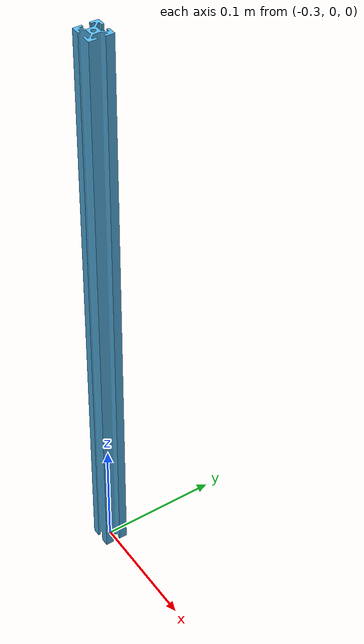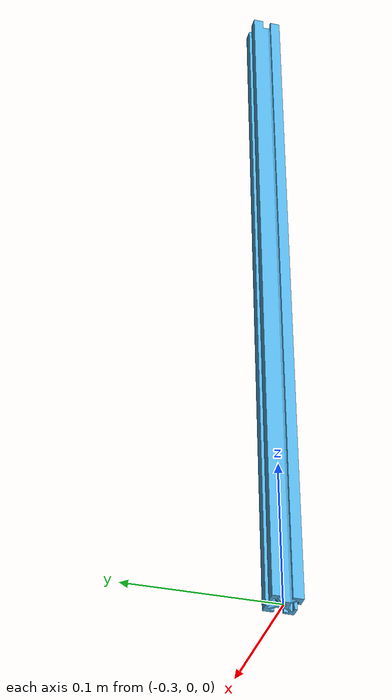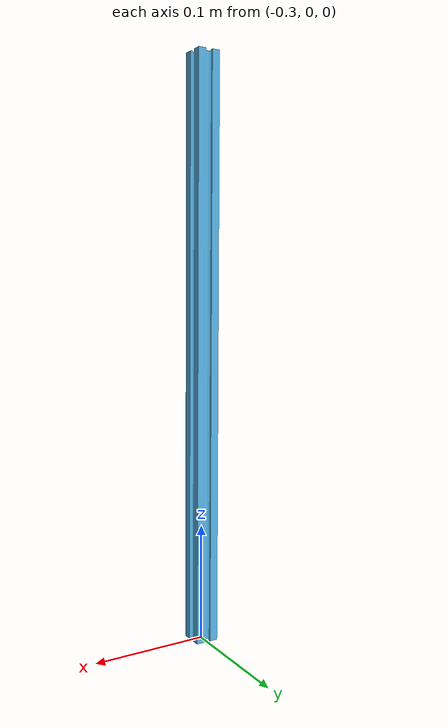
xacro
<?xml version="1.0" ?>

<robot name="robot" xmlns:xacro="http://www.ros.org/wiki/xacro">

   <material name="blue">
      <color rgba="0 0 0.8 1"/>
   </material>

   <link name="world"/>
 <joint name="fixed2" type="fixed">
    <parent link="world"/>
    <child link="barre600"/>
</joint>
<link name="barre600">
    <inertial>
      <mass value="10.635"/>
      <inertia ixx="860e-03" ixy="-39.84e-5" ixz="3.991e-3" iyy="83e-2" iyz="-38.29e-5" izz="40e-3"/>
      <origin rpy="0 0 0" xyz="0 1 0.17346"/>
    </inertial>
    <visual>
      <geometry>
        <mesh filename="package://yoyoman01_description/meshes/barre600.stl" scale="0.001 0.001 0.001"/>
      </geometry>
    <origin rpy="0 0 0" xyz="-0.3 0 0"/>
    </visual>
    <collision>
      <selfCollide>true</selfCollide>
      <geometry>
        <mesh filename="package://yoyoman01_description/meshes/barre.stl" scale="0.001 0.001 0.001"/>
      </geometry>
    <origin rpy="0 0 0" xyz="-0.3 0 0"/>
    </collision>
  </link>
  <gazebo>
    <plugin name="gazebo_ros_control" filename="libgazebo_ros_control.so">
    </plugin>
    <selfCollide>true</selfCollide>
    <static>false</static>
    <turnGravityOff>false</turnGravityOff>
  </gazebo>

</robot>
